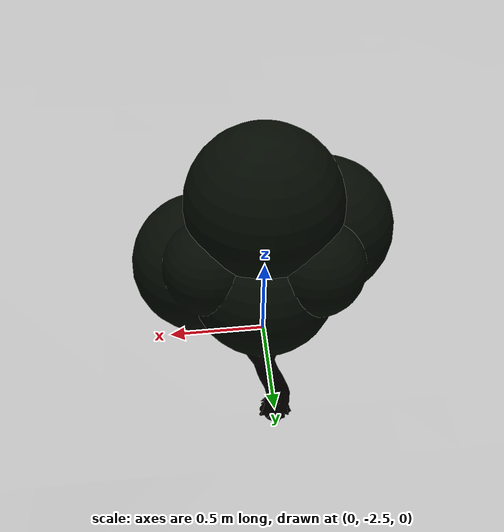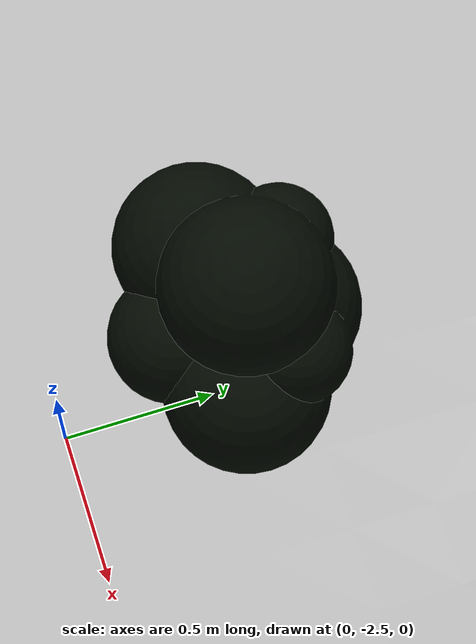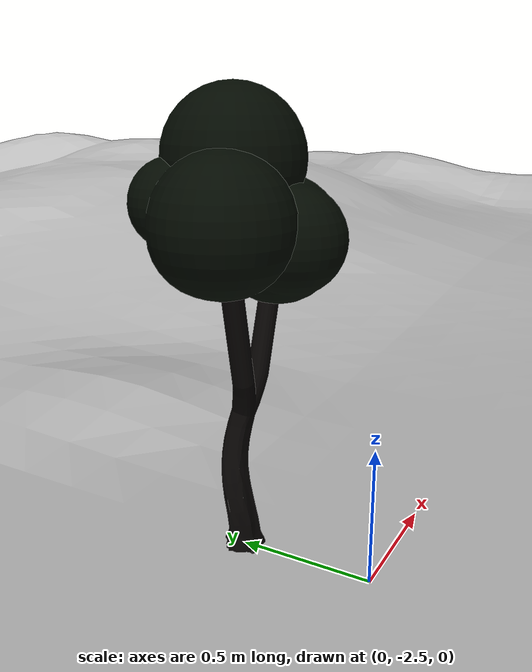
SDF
<?xml version="1.0" ?>
<sdf version="1.9">
  <world name="forest_world">
    <plugin name='ignition::gazebo::systems::Physics' filename='ignition-gazebo-physics-system' />
    <plugin name='ignition::gazebo::systems::UserCommands' filename='ignition-gazebo-user-commands-system' />
    <plugin name='ignition::gazebo::systems::SceneBroadcaster' filename='ignition-gazebo-scene-broadcaster-system' />
    <plugin name='ignition::gazebo::systems::Contact' filename='ignition-gazebo-contact-system' />
    <light name="sun" type="directional">
      <cast_shadows>0</cast_shadows>

      <cast_shadows>true</cast_shadows>
      <pose>0 0 10 0 0 0</pose>
      <diffuse>1 1 1 1</diffuse>
      <specular>0.2 0.2 0.2 1</specular>
      <direction>-0.5 0.5 -1</direction>

    </light>
    <gravity>0 0 -9.81</gravity>
    <magnetic_field>6e-06 2.3e-05 -4.2e-05</magnetic_field>
    <atmosphere type="adiabatic"/>
    <physics name="default_physics" type="ignored">
      <max_step_size>0.01</max_step_size>
      <real_time_factor>1</real_time_factor>
      <real_time_update_rate>100</real_time_update_rate>
    </physics>
    <scene>
      <ambient>1.0 1.0 1.0 1</ambient>
      <background>0.6 0.8 1.0 1</background>
      <shadows>0</shadows>
      <grid>0</grid>
    </scene>

    <!-- Initialise spherical coordinates somewhere -->
    <spherical_coordinates>
      <latitude_deg>0.0</latitude_deg>
      <longitude_deg>0.0</longitude_deg>
      <elevation>10.0</elevation>
      <heading_deg>0</heading_deg>
      <surface_model>EARTH_WGS84</surface_model>
    </spherical_coordinates>

    <include>
      <uri>model://forest_env</uri>
      <name>forest_env</name>
      <pose>0 0 0 0 0 0</pose>
    </include>

    <include>
      <uri>model://tree1</uri>
      <name>tree1</name>
      <pose>0 -2 0 0 0 0</pose>
    </include>

  </world>
</sdf>

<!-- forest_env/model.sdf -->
<sdf version="1.9">
  <model name="forest_env">
    <static>true</static>
    <link name="ground_link">

      <!-- VISUAL: hilly mesh -->
      <visual name="ground_visual">
        <geometry>
          <mesh>
            <uri>model://forest_env/meshes/Environment1.dae</uri>
            <scale>15 15 15</scale>
          </mesh>
        </geometry>
      </visual>

      <!-- COLLISION: match the visual (same uri + scale) -->
      <collision name="ground_collision">
        <geometry>
          <mesh>
            <!-- use a simplified collision mesh if you have one: Environment1_col.stl -->
            <uri>model://forest_env/meshes/Environment1.dae</uri>
            <scale>15 15 15</scale>
          </mesh>
        </geometry>
        <surface>
          <contact>
            <ode>
              <kp>2e6</kp>
              <kd>1.0</kd>
              <max_vel>0.2</max_vel>
              <min_depth>0.001</min_depth>
            </ode>
          </contact>
          <friction><ode><mu>1.0</mu><mu2>1.0</mu2></ode></friction>
        </surface>
      </collision>

    </link>
  </model>
</sdf>

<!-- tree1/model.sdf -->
<sdf version="1.9">
  <model name="tree1">
    <static>true</static>
    <link name="tree_link">
      <visual name="tree_visual">
        <geometry>
          <mesh>
            <uri>model://tree1/meshes/tree_a.dae</uri>
            <scale>0.1 0.1 0.1</scale>
          </mesh>
        </geometry>
      </visual>
      <collision name="tree_collision">
        <geometry>
          <mesh>
            <uri>model://tree1/meshes/tree_a.dae</uri>
            <scale>0.1 0.1 0.1</scale>
          </mesh>
        </geometry>
      </collision>
    </link>
  </model>
</sdf>
